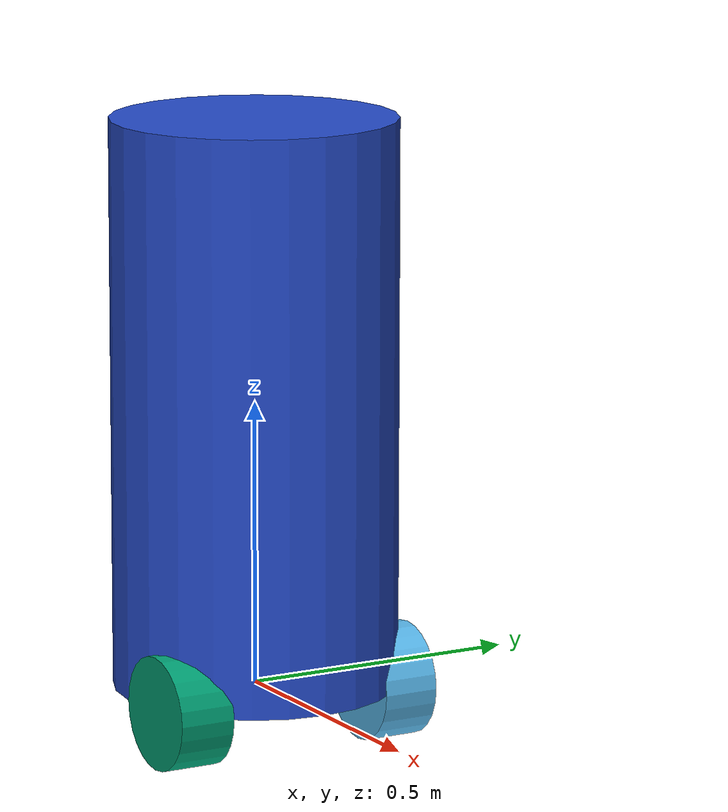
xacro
<?xml version="1.0"?>
<robot name="turtle1" xmlns:xacro="http://ros.org/wiki/xacro">
<xacro:property name="base_length" value="1" />
<xacro:property name="base_radius" value="0.25" />
<xacro:property name="base_mass" value="5" />

<xacro:property name="lwheel_length" value="0.1" />
<xacro:property name="lwheel_radius" value="0.1" />
<xacro:property name="lwheel_mass" value="2" />

<xacro:property name="rwheel_length" value="0.1" />
<xacro:property name="rwheel_radius" value="0.1" />
<xacro:property name="rwheel_mass" value="2" />

<xacro:property name="sphere_radius" value="0.1" />
<xacro:property name="sphere_mass" value="2" />

<link name="base_link">
	<collision>
      		<origin xyz="0 0 0.5" rpy="0 0 0" />
      		<geometry>
        		<cylinder length="${base_length}" radius="${base_radius}"/>
      		</geometry>
      	</collision>
        <visual>
          <origin xyz="0 0 0.5" rpy="0 0 0" />
          <geometry>
            	<cylinder length="${base_length}" radius="${base_radius}"/>
          </geometry>
          <material name="blue"/>
        </visual>
        <inertial>
           	<mass value="${base_mass}" />
            	<origin xyz="0 0 0.5" rpy="0 0 0" />
            	<inertia ixx="${base_mass*(3*base_radius*base_radius + base_length*base_length)/12}" ixy="0" ixz="0"
            	iyy="${base_mass*(3*base_radius*base_radius + base_length*base_length)/12}" iyz="0"
            	izz="${base_mass*base_radius*base_radius/2}" />
       </inertial>
      </link>

      <link name="left_Wheel">
	<collision>
      		<geometry>
        		<cylinder length="${lwheel_length}" radius="${lwheel_radius}"/>
      		</geometry>
      	</collision>
        <visual>
          	<geometry>
            		<cylinder length="${lwheel_length}" radius="${lwheel_radius}"/>
            		<material name="white"/>
          	</geometry>
        </visual>
        <inertial>
            	<mass value="${lwheel_mass}" />
            	<inertia ixx="${lwheel_mass*(3*lwheel_radius*base_radius + lwheel_length*lwheel_length)/12}" ixy="0" ixz="0"
            	iyy="${lwheel_mass*(3*lwheel_radius*lwheel_radius + lwheel_length*lwheel_length)/12}" iyz="0"
            	izz="${lwheel_mass*lwheel_radius*lwheel_radius/2}" />
       </inertial>
      </link>

      <link name="right_Wheel">
	<collision>
      		<geometry>
        		<cylinder length="${rwheel_length}" radius="${rwheel_radius}"/>
      		</geometry>
      	</collision>
        <visual>
          	<geometry>
            		<cylinder length="${rwheel_length}" radius="${rwheel_radius}"/>
            		<material name="white"/>
          	</geometry>
        </visual>
        <inertial>
            	<mass value="${rwheel_mass}" />
            	<inertia ixx="${rwheel_mass*(3*rwheel_radius*base_radius + rwheel_length*rwheel_length)/12}" ixy="0" ixz="0"
            	iyy="${rwheel_mass*(3*rwheel_radius*rwheel_radius + rwheel_length*rwheel_length)/12}" iyz="0"
            	izz="${rwheel_mass*rwheel_radius*rwheel_radius/2}" />
       </inertial>
      </link>

      <link name="sphere_Wheel">
	<collision>
      		<geometry>
        		<sphere radius="${sphere_radius}"/>
      		</geometry>

      	</collision>
        <visual>
          	<geometry>
            		<sphere radius="${sphere_radius}"/>
            		<material name="blue"/>
          	</geometry>
        </visual>
        <inertial>
            	<mass value="${sphere_mass}" />
            	<inertia ixx="${2*sphere_mass*sphere_radius*sphere_radius/5}" ixy="0" ixz="0"
            	iyy="${2*sphere_mass*sphere_radius*sphere_radius/5}" iyz="0"
            	izz="${2*sphere_mass*sphere_radius*sphere_radius/5}" />
       </inertial>
      </link>

      <link name='imu_link'>
      <collision>
      		<geometry>
        		<box size="0.1 0.1 0.1"/>
      		</geometry>
      	</collision>
      	<inertial>
      		<mass value="0.2"/>
      		<origin xyz="0 0 0.2" rpy=" 0 0 0"/>
	      	<inertia ixx="0.004" ixy="0.0" ixz="0" iyy="0.006" iyz="0" izz="0.007" />
     	</inertial>
    	<visual >
      		<origin xyz="0 0 0.2" rpy=" 0 0 0"/>
      		<geometry>
        		<box size="0.1 0.1 0.1"/>
      		</geometry>
    	</visual>
      </link>

      <joint name ="left_wheel_joint" type="continuous">
      		<origin xyz="0.1 0.2 0" rpy="-1.57 0 0"/>
      		<parent link="base_link"/>
        	<child link="left_Wheel"/>
        	<axis  xyz="0 0 1" />
      </joint>

      <joint name ="right_wheel_joint" type="continuous">
      		<origin xyz="0.1 -0.2 0" rpy="-1.57 0 0"/>
      		<parent link="base_link"/>
        	<child link="right_Wheel"/>
        	<axis  xyz="0 0 1" />
      </joint>

      <joint name ="sphere_wheel_joint" type="fixed">
      		<origin xyz="-0.2 0 0" rpy="0 0 0"/>
      		<parent link="base_link"/>
        	<child link="sphere_Wheel"/>

      </joint>
       <joint name="imu_joint" type="fixed">
          <origin xyz="0 0 0" rpy="0 0 0"/>
	  <parent link="base_link"/>
	  <child link="imu_link"/>
	</joint>

	<gazebo reference="imu_link">
	   <gravity>true</gravity>
	   <sensor name="imu_sensor" type="imu">
	       <always_on>true</always_on>
	       <update_rate>10</update_rate>
	       <visualize>true</visualize>
	       <topic>__default_topic__</topic>
	    <plugin filename="libgazebo_ros_imu_sensor.so" name="imu_plugin">
	    	<ros>
        		<namespace>/demo</namespace>
        		<remapping>~/out:=imu</remapping>
      		</ros>
		<topicName>imu</topicName>
		<bodyName>imu_link</bodyName>
		<updateRateHZ>10.0</updateRateHZ>
		<gaussianNoise>0.0</gaussianNoise>
		<xyzOffset>0 0 0</xyzOffset>
		<rpyOffset>0 0 0</rpyOffset>
		<frameName>imu_link</frameName>
		<initialOrientationAsReference>false</initialOrientationAsReference>
	     </plugin>
	        <pose>0 0 0 0 0 0</pose>
	    </sensor>
  	</gazebo>

  	<gazebo reference="sphere_Wheel">
	    <material>Gazebo/Blue</material>
	    	<mu1 value="0.0"/>
    		<mu2 value="0.0"/>
	</gazebo>

  	<gazebo>
	  <plugin name='diff_drive' filename='libgazebo_ros_diff_drive.so'>
	    <ros>
	      <namespace>/turtle1</namespace>
	    </ros>
	   <updateRate>100</updateRate>
	    <!-- wheels -->
	    <left_joint>left_wheel_joint</left_joint>
	    <right_joint>right_wheel_joint</right_joint>

	    <!-- kinematics -->
	    <wheel_separation>0.4</wheel_separation>
	    <wheel_diameter>0.1</wheel_diameter>

	    <!-- limits -->
	    <max_wheel_torque>0.5</max_wheel_torque>
	    <max_wheel_acceleration>0.3</max_wheel_acceleration>
	    <commandTopic>turtle1/cmd_vel</commandTopic>
	    <!-- output -->
	    <publish_odom>true</publish_odom>
	    <publish_odom_tf>true</publish_odom_tf>
	    <publish_wheel_tf>true</publish_wheel_tf>

	    <odometry_frame>odom</odometry_frame>
	    <robot_base_frame>base_link</robot_base_frame>
	  </plugin>
	</gazebo>
</robot>
